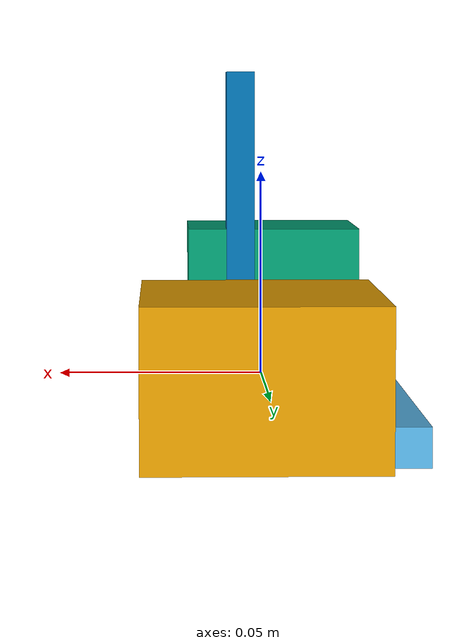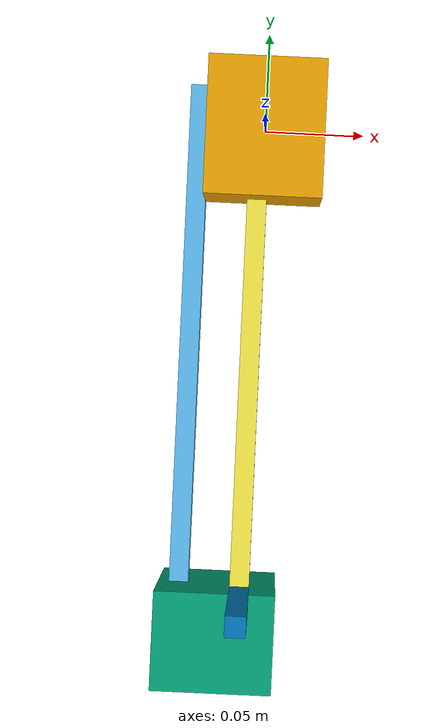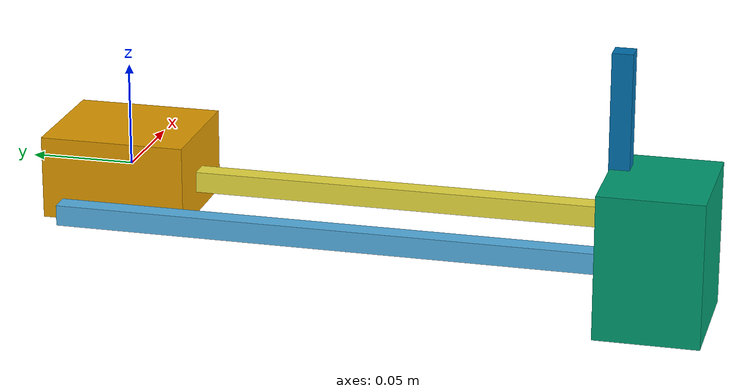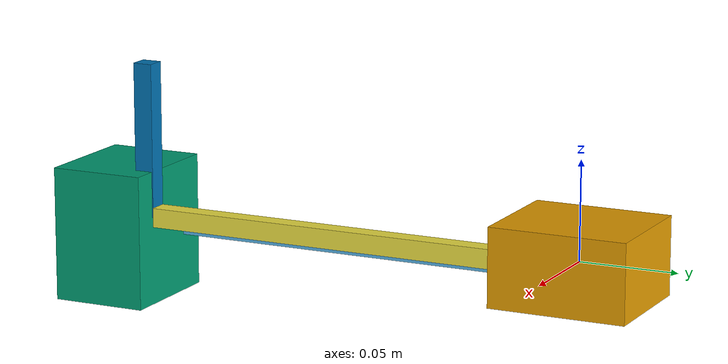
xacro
<?xml version="1.0"?>

<robot xmlns:xacro="http://www.ros.org/wiki/xacro" name="my_robot">

	<link name="base">
		<visual>
			<geometry>
				<box size="0.06 0.07 0.04"/>
			</geometry>
			<origin rpy="0 0 0" xyz="0 0 0"/> <!-- CHANGE LATER -->
		</visual>
	</link>

	<link name="arm">
		<visual>
			<geometry>
				<box size="0.01 0.26 0.01"/>
			</geometry>
		</visual>
	</link>

	<link name="mount">
		<visual>
			<geometry>
				<box size="0.061 0.050 0.07"/>
			</geometry>
		</visual>
	</link>

	<link name="end_effector_1">
		<visual>
			<geometry>
				<box size="0.01 0.207 0.01"/>
			</geometry>
		</visual>
	</link>

	<link name="end_effector_2">
		<visual>
			<geometry>
				<box size="0.01 0.01 0.08"/>
			</geometry>
		</visual>
	</link>

	<joint name ="base_to_arm" type="prismatic">
		<parent link="base"/>
		<child link="arm"/>
		<axis xyz="0 1 0"/>
		<limit effort="1" lower="-0.19" upper="0" velocity="1"/>
		<origin xyz="-0.035 -0.105 -0.015"/>
	</joint>

	<joint name ="arm_to_mount" type="fixed">
		<parent link="arm"/>
		<child link="mount"/>
		<origin xyz="0.02 -0.155 0"/>
	</joint>

	<joint name ="mount_to_end_effector_1" type="revolute">
		<parent link="mount"/>
		<child link="end_effector_1"/>
		<axis xyz="0 1 0"/>
		<limit effort="1" lower="0" upper="1.58" velocity="1"/>
		<origin xyz="0.012 0.129 0.011"/>   <!-- UPDATE WITH CAD -->
	</joint>

	<joint name ="end_effector_1_to_end_effector_2" type="fixed">
		<parent link="end_effector_1"/>
		<child link="end_effector_2"/>
		<origin xyz="0 -0.1085 0.04"/>
	</joint>

</robot>
